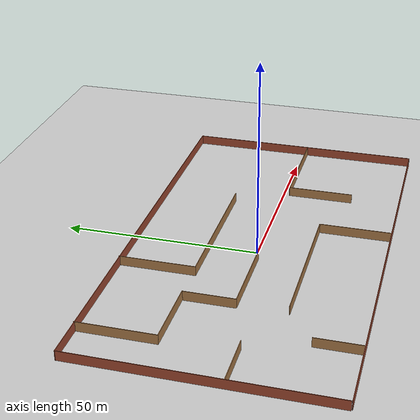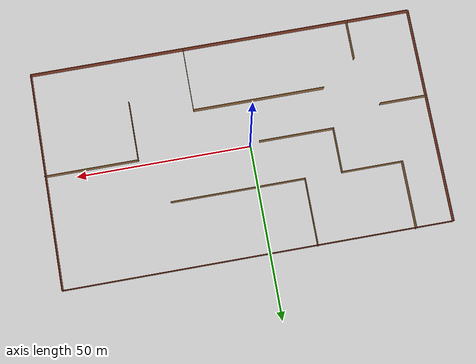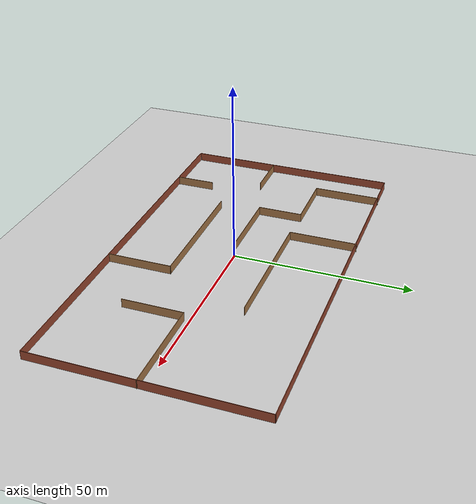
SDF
<sdf version="1.6">
 <world name="default">
  <light name="sun" type="directional">
   <pose>0 0 10 0 -0 0</pose>
   <diffuse>0.8 0.8 0.8 1</diffuse>
   <specular>0.2 0.2 0.2 1</specular>
   <attenuation>
    <range>1000</range>
    <constant>0.9</constant>
    <linear>0.01</linear>
    <quadratic>0.001</quadratic>
   </attenuation>
   <direction>-0.5 0.1 -0.9</direction>
  </light>
  <model name="ground_plane">
   <static>1</static>
   <link name="link">
    <collision name="collision">
     <geometry><plane><normal>0 0 1</normal><size>100 100</size></plane></geometry>
     <surface><friction><ode><mu>100</mu><mu2>50</mu2></ode></friction></surface>
    </collision>
    <visual name="visual">
     <cast_shadows>0</cast_shadows>
     <geometry><plane><normal>0 0 1</normal><size>100 100</size></plane></geometry>
     <material>
      <script><uri>file://media/materials/scripts/gazebo.material</uri><name>Gazebo/Grey</name></script>
     </material>
    </visual>
   </link>
  </model>
  <gravity>0 0 -9.8</gravity>
  <magnetic_field>6e-06 2.3e-05 -4.2e-05</magnetic_field>
  <atmosphere type="adiabatic"/>
  <physics name="default_physics" default="0" type="ode">
   <max_step_size>0.001</max_step_size>
   <real_time_factor>1</real_time_factor>
   <real_time_update_rate>1000</real_time_update_rate>
  </physics>
  <scene><ambient>0.4 0.4 0.4 1</ambient><background>0.7 0.7 0.7 1</background><shadows>1</shadows></scene>
  <spherical_coordinates>
   <surface_model>EARTH_WGS84</surface_model>
   <latitude_deg>0</latitude_deg>
   <longitude_deg>0</longitude_deg>
   <elevation>0</elevation>
   <heading_deg>0</heading_deg>
  </spherical_coordinates>
  <model name="small_maze_0">
   <pose>3.22975 -0.025021 0 0 -0 0</pose>
   <link name="Wall_39">
    <collision name="Wall_39_Collision">
     <geometry><box><size>110.5 0.15 2.5</size></box></geometry>
     <pose>0 0 1.25 0 -0 0</pose>
    </collision>
    <visual name="Wall_39_Visual">
     <pose>0 0 1.25 0 -0 0</pose>
     <geometry><box><size>110.5 0.15 2.5</size></box></geometry>
     <material>
      <script><uri>file://media/materials/scripts/gazebo.material</uri><name>Gazebo/Bricks</name></script>
      <ambient>1 1 1 1</ambient>
     </material>
     <meta><layer>0</layer></meta>
    </visual>
    <pose>0.06094 -31.406 0 0 -0 0</pose>
   </link>
   <link name="Wall_40">
    <collision name="Wall_40_Collision">
     <geometry><box><size>62.75 0.15 2.5</size></box></geometry>
     <pose>0 0 1.25 0 -0 0</pose>
    </collision>
    <visual name="Wall_40_Visual">
     <pose>0 0 1.25 0 -0 0</pose>
     <geometry><box><size>62.75 0.15 2.5</size></box></geometry>
     <material>
      <script><uri>file://media/materials/scripts/gazebo.material</uri><name>Gazebo/Bricks</name></script>
      <ambient>1 1 1 1</ambient>
     </material>
     <meta><layer>0</layer></meta>
    </visual>
    <pose>55.2359 -0.105984 0 0 -0 1.5708</pose>
   </link>
   <link name="Wall_41">
    <collision name="Wall_41_Collision">
     <geometry><box><size>110.75 0.15 2.5</size></box></geometry>
     <pose>0 0 1.25 0 -0 0</pose>
    </collision>
    <visual name="Wall_41_Visual">
     <pose>0 0 1.25 0 -0 0</pose>
     <geometry><box><size>110.75 0.15 2.5</size></box></geometry>
     <material>
      <script><uri>file://media/materials/scripts/gazebo.material</uri><name>Gazebo/Bricks</name></script>
      <ambient>1 1 1 1</ambient>
     </material>
     <meta><layer>0</layer></meta>
    </visual>
    <pose>-0.06406 31.194 0 0 -0 3.14159</pose>
   </link>
   <link name="Wall_42">
    <collision name="Wall_42_Collision">
     <geometry><box><size>62.5 0.15 2.5</size></box></geometry>
     <pose>0 0 1.25 0 -0 0</pose>
    </collision>
    <visual name="Wall_42_Visual">
     <pose>0 0 1.25 0 -0 0</pose>
     <geometry><box><size>62.5 0.15 2.5</size></box></geometry>
     <material>
      <script><uri>file://media/materials/scripts/gazebo.material</uri><name>Gazebo/Bricks</name></script>
      <ambient>1 1 1 1</ambient>
     </material>
     <meta><layer>0</layer></meta>
    </visual>
    <pose>-55.3641 0.019016 0 0 -0 -1.5708</pose>
   </link>
   <link name="Wall_44">
    <collision name="Wall_44_Collision">
     <geometry><box><size>19.5 0.15 2.5</size></box></geometry>
     <pose>0 0 1.25 0 -0 0</pose>
    </collision>
    <visual name="Wall_44_Visual">
     <pose>0 0 1.25 0 -0 0</pose>
     <geometry><box><size>19.5 0.15 2.5</size></box></geometry>
     <material>
      <script><uri>file://media/materials/scripts/gazebo.material</uri><name>Gazebo/Wood</name></script>
      <ambient>1 1 1 1</ambient>
     </material>
     <meta><layer>0</layer></meta>
    </visual>
    <pose>-44.7065 21.731 0 0 -0 -1.5708</pose>
   </link>
   <link name="Wall_45">
    <collision name="Wall_45_Collision">
     <geometry><box><size>17.5 0.15 2.5</size></box></geometry>
     <pose>0 0 1.25 0 -0 0</pose>
    </collision>
    <visual name="Wall_45_Visual">
     <pose>0 0 1.25 0 -0 0</pose>
     <geometry><box><size>17.5 0.15 2.5</size></box></geometry>
     <material>
      <script><uri>file://media/materials/scripts/gazebo.material</uri><name>Gazebo/Wood</name></script>
      <ambient>1 1 1 1</ambient>
     </material>
     <meta><layer>0</layer></meta>
    </visual>
    <pose>-36.0315 12.056 0 0 -0 0</pose>
   </link>
   <link name="Wall_46">
    <collision name="Wall_46_Collision">
     <geometry><box><size>13 0.15 2.5</size></box></geometry>
     <pose>0 0 1.25 0 -0 0</pose>
    </collision>
    <visual name="Wall_46_Visual">
     <pose>0 0 1.25 0 -0 0</pose>
     <geometry><box><size>13 0.15 2.5</size></box></geometry>
     <material>
      <script><uri>file://media/materials/scripts/gazebo.material</uri><name>Gazebo/Wood</name></script>
      <ambient>1 1 1 1</ambient>
     </material>
     <meta><layer>0</layer></meta>
    </visual>
    <pose>-27.3565 5.63099 0 0 -0 -1.5708</pose>
   </link>
   <link name="Wall_47">
    <collision name="Wall_47_Collision">
     <geometry><box><size>21.5 0.15 2.5</size></box></geometry>
     <pose>0 0 1.25 0 -0 0</pose>
    </collision>
    <visual name="Wall_47_Visual">
     <pose>0 0 1.25 0 -0 0</pose>
     <geometry><box><size>21.5 0.15 2.5</size></box></geometry>
     <material>
      <script><uri>file://media/materials/scripts/gazebo.material</uri><name>Gazebo/Wood</name></script>
      <ambient>1 1 1 1</ambient>
     </material>
     <meta><layer>0</layer></meta>
    </visual>
    <pose>-16.6815 -0.794013 0 0 -0 0</pose>
   </link>
   <link name="Wall_49">
    <collision name="Wall_49_Collision">
     <geometry><box><size>19.5 0.15 2.5</size></box></geometry>
     <pose>0 0 1.25 0 -0 0</pose>
    </collision>
    <visual name="Wall_49_Visual">
     <pose>0 0 1.25 0 -0 0</pose>
     <geometry><box><size>19.5 0.15 2.5</size></box></geometry>
     <material>
      <script><uri>file://media/materials/scripts/gazebo.material</uri><name>Gazebo/Wood</name></script>
      <ambient>1 1 1 1</ambient>
     </material>
     <meta><layer>0</layer></meta>
    </visual>
    <pose>-16.7272 21.731 0 0 -0 -1.5708</pose>
   </link>
   <link name="Wall_50">
    <collision name="Wall_50_Collision">
     <geometry><box><size>38.5 0.15 2.5</size></box></geometry>
     <pose>0 0 1.25 0 -0 0</pose>
    </collision>
    <visual name="Wall_50_Visual">
     <pose>0 0 1.25 0 -0 0</pose>
     <geometry><box><size>38.5 0.15 2.5</size></box></geometry>
     <material>
      <script><uri>file://media/materials/scripts/gazebo.material</uri><name>Gazebo/Wood</name></script>
      <ambient>1 1 1 1</ambient>
     </material>
     <meta><layer>0</layer></meta>
    </visual>
    <pose>2.44782 12.056 0 0 -0 0</pose>
   </link>
   <link name="Wall_52">
    <collision name="Wall_52_Collision">
     <geometry><box><size>18.5 0.15 2.5</size></box></geometry>
     <pose>0 0 1.25 0 -0 0</pose>
    </collision>
    <visual name="Wall_52_Visual">
     <pose>0 0 1.25 0 -0 0</pose>
     <geometry><box><size>18.5 0.15 2.5</size></box></geometry>
     <material>
      <script><uri>file://media/materials/scripts/gazebo.material</uri><name>Gazebo/Wood</name></script>
      <ambient>1 1 1 1</ambient>
     </material>
     <meta><layer>0</layer></meta>
    </visual>
    <pose>10.9357 -22.1786 0 0 -0 1.5708</pose>
   </link>
   <link name="Wall_53">
    <collision name="Wall_53_Collision">
     <geometry><box><size>38 0.15 2.5</size></box></geometry>
     <pose>0 0 1.25 0 -0 0</pose>
    </collision>
    <visual name="Wall_53_Visual">
     <pose>0 0 1.25 0 -0 0</pose>
     <geometry><box><size>38 0.15 2.5</size></box></geometry>
     <material>
      <script><uri>file://media/materials/scripts/gazebo.material</uri><name>Gazebo/Wood</name></script>
      <ambient>1 1 1 1</ambient>
     </material>
     <meta><layer>0</layer></meta>
    </visual>
    <pose>-7.98929 -13.0036 0 0 -0 3.14159</pose>
   </link>
   <link name="Wall_55">
    <collision name="Wall_55_Collision">
     <geometry><box><size>26.75 0.15 2.5</size></box></geometry>
     <pose>0 0 1.25 0 -0 0</pose>
    </collision>
    <visual name="Wall_55_Visual">
     <pose>0 0 1.25 0 -0 0</pose>
     <geometry><box><size>26.75 0.15 2.5</size></box></geometry>
     <material>
      <script><uri>file://media/materials/scripts/gazebo.material</uri><name>Gazebo/Wood</name></script>
      <ambient>1 1 1 1</ambient>
     </material>
     <meta><layer>0</layer></meta>
    </visual>
    <pose>42.0641 -1.40923 0 0 -0 3.14159</pose>
   </link>
   <link name="Wall_56">
    <collision name="Wall_56_Collision">
     <geometry><box><size>17.25 0.15 2.5</size></box></geometry>
     <pose>0 0 1.25 0 -0 0</pose>
    </collision>
    <visual name="Wall_56_Visual">
     <pose>0 0 1.25 0 -0 0</pose>
     <geometry><box><size>17.25 0.15 2.5</size></box></geometry>
     <material>
      <script><uri>file://media/materials/scripts/gazebo.material</uri><name>Gazebo/Wood</name></script>
      <ambient>1 1 1 1</ambient>
     </material>
     <meta><layer>0</layer></meta>
    </visual>
    <pose>28.7641 -9.95923 0 0 -0 -1.5708</pose>
   </link>
   <link name="Wall_58">
    <collision name="Wall_58_Collision">
     <geometry><box><size>11.5 0.15 2.5</size></box></geometry>
     <pose>0 0 1.25 0 -0 0</pose>
    </collision>
    <visual name="Wall_58_Visual">
     <pose>0 0 1.25 0 -0 0</pose>
     <geometry><box><size>11.5 0.15 2.5</size></box></geometry>
     <material>
      <script><uri>file://media/materials/scripts/gazebo.material</uri><name>Gazebo/Wood</name></script>
      <ambient>1 1 1 1</ambient>
     </material>
     <meta><layer>0</layer></meta>
    </visual>
    <pose>-37.1885 -25.7249 0 0 -0 1.5708</pose>
   </link>
   <link name="Wall_60">
    <collision name="Wall_60_Collision">
     <geometry><box><size>13.5 0.15 2.5</size></box></geometry>
     <pose>0 0 1.25 0 -0 0</pose>
    </collision>
    <visual name="Wall_60_Visual">
     <pose>0 0 1.25 0 -0 0</pose>
     <geometry><box><size>13.5 0.15 2.5</size></box></geometry>
     <material>
      <script><uri>file://media/materials/scripts/gazebo.material</uri><name>Gazebo/Wood</name></script>
      <ambient>1 1 1 1</ambient>
     </material>
     <meta><layer>0</layer></meta>
    </visual>
    <pose>-48.6673 -5.57291 0 0 -0 0</pose>
   </link>
   <static>1</static>
  </model>
 </world>
</sdf>
